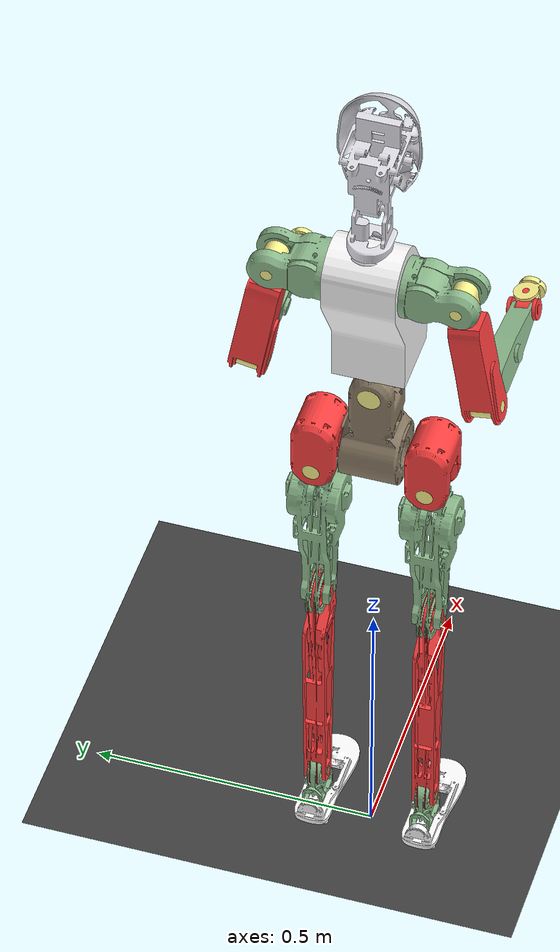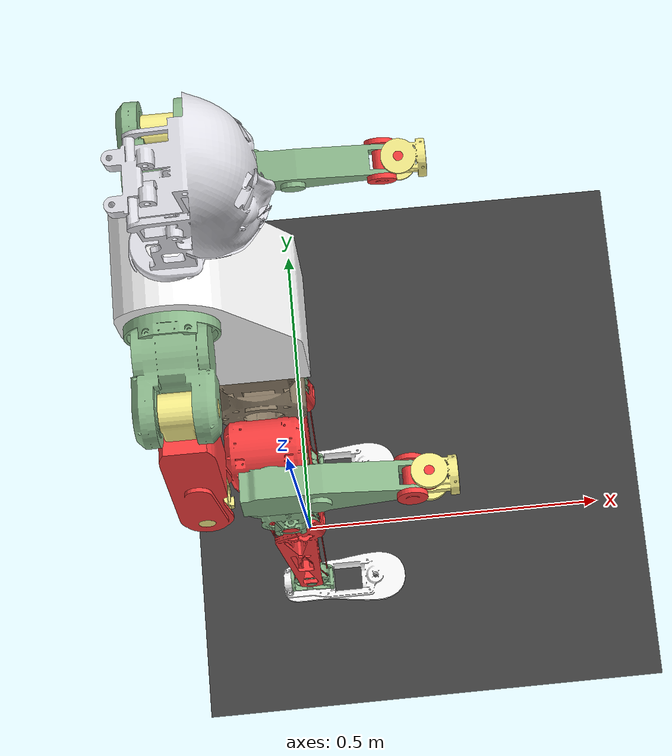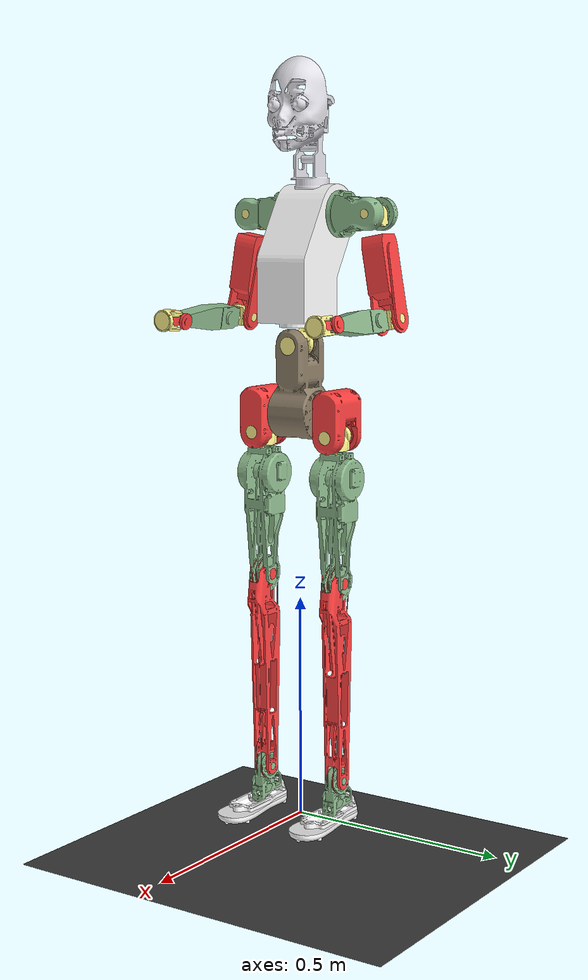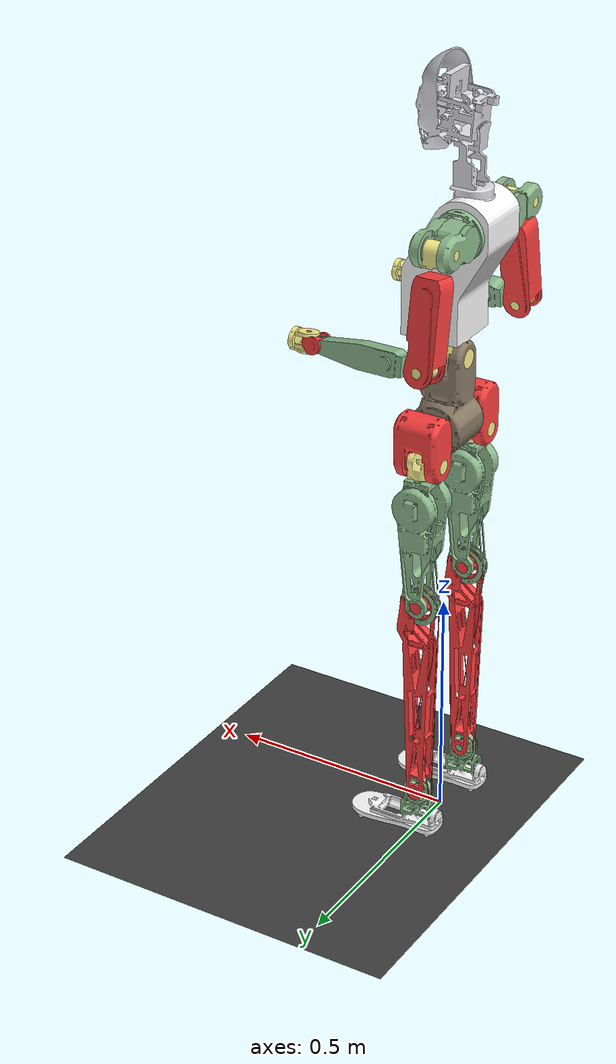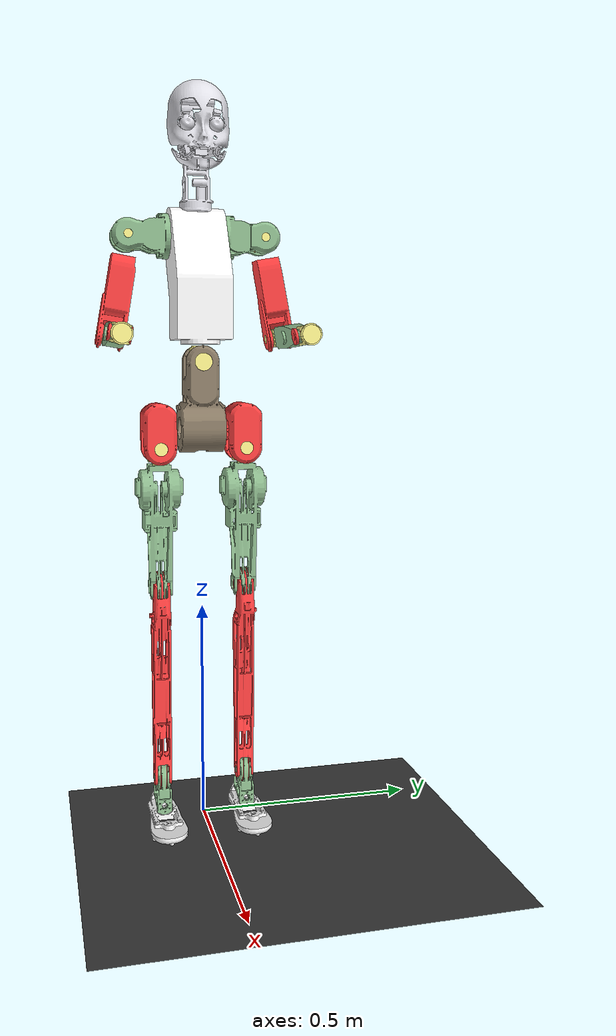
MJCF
<mujoco model="X3_fangsheng">
  <compiler angle="radian" meshdir="./meshes/"/>
  <statistic meansize="0.177939" extent="1.9618" center="0.0465088 1.93584e-06 -0.21519"/>
  <default>
    <joint damping="0.1" armature="0.01" frictionloss="0.1"/>
  </default>
  <asset>
    <texture type="skybox" builtin="gradient" width="128" height="128" rgb1="0.4 0.6 0.8" rgb2="0 0 0"/>
    <texture name="plane" type="2d" builtin="checker" rgb1="0.2 0.2 0.2" rgb2="0.3 0.3 0.3" width="512"
              height="512"/>
    <material name="plane" reflectance="0.0" texture="plane" texrepeat="1 1" texuniform="true"/>
    <mesh name="pelvis" file="pelvis.STL"/>
    <mesh name="left_hip_pitch_link" file="left_hip_pitch_link.STL"/>
    <mesh name="left_hip_roll_link" file="left_hip_roll_link.STL"/>
    <mesh name="left_hip_yaw_link" file="left_hip_yaw_link.STL"/>
    <mesh name="left_knee_link" file="left_knee_link.STL"/>
    <mesh name="left_ankle_pitch_link" file="left_ankle_pitch_link.STL"/>
    <mesh name="left_ankle_roll_link" file="left_ankle_roll_link.STL"/>
    <mesh name="right_hip_pitch_link" file="right_hip_pitch_link.STL"/>
    <mesh name="right_hip_roll_link" file="right_hip_roll_link.STL"/>
    <mesh name="right_hip_yaw_link" file="right_hip_yaw_link.STL"/>
    <mesh name="right_knee_link" file="right_knee_link.STL"/>
    <mesh name="right_ankle_pitch_link" file="right_ankle_pitch_link.STL"/>
    <mesh name="right_ankle_roll_link" file="right_ankle_roll_link.STL"/>
    <mesh name="waist_roll_link" file="waist_roll_link.STL"/>
    <mesh name="torso_link" file="torso_link.STL"/>
    <mesh name="left_shoulder_pitch_link" file="left_shoulder_pitch_link.STL"/>
    <mesh name="left_shoulder_roll_link" file="left_shoulder_roll_link.STL"/>
    <mesh name="left_shoulder_yaw_link" file="left_shoulder_yaw_link.STL"/>
    <mesh name="left_elbow_link" file="left_elbow_link.STL"/>
    <mesh name="left_wrist_roll_link" file="left_wrist_roll_link.STL"/>
    <mesh name="left_wrist_pitch_link" file="left_wrist_pitch_link.STL"/>
    <mesh name="left_wrist_yaw_link" file="left_wrist_yaw_link.STL"/>
    <mesh name="right_shoulder_pitch_link" file="right_shoulder_pitch_link.STL"/>
    <mesh name="right_shoulder_roll_link" file="right_shoulder_roll_link.STL"/>
    <mesh name="right_shoulder_yaw_link" file="right_shoulder_yaw_link.STL"/>
    <mesh name="right_elbow_link" file="right_elbow_link.STL"/>
    <mesh name="right_wrist_roll_link" file="right_wrist_roll_link.STL"/>
    <mesh name="right_wrist_pitch_link" file="right_wrist_pitch_link.STL"/>
    <mesh name="right_wrist_yaw_link" file="right_wrist_yaw_link.STL"/>
    <mesh name="head_link" file="head_link.STL"/>
  </asset>

  <worldbody>
    <geom name="floor" pos="0.001 0 0" size="100 100 .125" type="plane" material="plane" condim="3"
          conaffinity="15" friction="0.6 0.6 0.001"/>
    <light mode="trackcom" pos="0 0 5" dir="0 0 -1"/>
    <body name="pelvis" pos="0 0 0.87">
      <inertial pos="0 0 0.0835199" quat="0.700356 0.000195888 -0.000200327 0.713793" mass="3.5" diaginertia="0.015972 0.0152619 0.00733448"/>
      <joint name="floating_base_joint" type="free" limited="false" actuatorfrclimited="false"/>
      <geom type="mesh" contype="0" conaffinity="0" group="1" density="0" rgba="0.5451 0.48627 0.4 1" mesh="pelvis"/>
      <geom type="mesh" rgba="0.5451 0.48627 0.4 1" mesh="pelvis"/>
      <site name="imu" pos="0 0 0" size="0.01" type="sphere" rgba="0 0 0 0"/>
      <body name="left_hip_pitch_link" pos="0 0.0495 0.045">
        <inertial pos="0 0.0486009 5.014e-05" quat="0.707099 0.00340246 -0.00340246 0.707099" mass="1.3" diaginertia="0.00341357 0.00281701 0.00217281"/>
        <joint name="left_hip_pitch_joint" pos="0 0 0" axis="0 1 0" range="-2.3562 2.3562" actuatorfrcrange="-75 75"/>
        <geom type="mesh" contype="0" conaffinity="0" group="1" density="0" rgba="1 0.25098 0.25098 1" mesh="left_hip_pitch_link"/>
        <geom type="mesh" rgba="1 0.25098 0.25098 1" mesh="left_hip_pitch_link"/>
        <body name="left_hip_roll_link" pos="0 0.048 -0.044">
          <inertial pos="0.00021125 0 -0.00303622" quat="0.50257 0.497417 0.497417 0.50257" mass="0.2" diaginertia="0.00017774 0.000176564 4.94365e-05"/>
          <joint name="left_hip_roll_joint" pos="0 0 0" axis="1 0 0" range="-0.5236 1.6581" actuatorfrcrange="-40.2 40.2"/>
          <geom type="mesh" contype="0" conaffinity="0" group="1" density="0" rgba="1 0.96471 0.56078 1" mesh="left_hip_roll_link"/>
          <geom type="mesh" rgba="1 0.96471 0.56078 1" mesh="left_hip_roll_link"/>
          <body name="left_hip_yaw_link">
            <inertial pos="0.00068945 0.00010574 -0.171461" quat="0.758254 0.0018302 0.00279792 0.651951" mass="1.9" diaginertia="0.0185792 0.0185636 0.00185486"/>
            <joint name="left_hip_yaw_joint" pos="0 0 0" axis="0 0 1" range="-1.9199 3.1416" actuatorfrcrange="-40.2 40.2"/>
            <geom type="mesh" contype="0" conaffinity="0" group="1" density="0" rgba="0.560784 0.737255 0.560784 1" mesh="left_hip_yaw_link"/>
            <body name="left_knee_link" pos="0 0 -0.326">
              <inertial pos="0.00345955 6.222e-05 -0.197211" quat="0.70901 -0.00853288 -0.00882017 0.705091" mass="0.8" diaginertia="0.0167348 0.0166058 0.000403331"/>
              <joint name="left_knee_joint" pos="0 0 0" axis="0 1 0" range="0 2.3562" actuatorfrcrange="-57.2 57.2"/>
              <geom type="mesh" contype="0" conaffinity="0" group="1" density="0" rgba="1 0.25098 0.25098 1" mesh="left_knee_link"/>
              <geom type="mesh" rgba="1 0.25098 0.25098 1" mesh="left_knee_link"/>
              <body name="left_ankle_pitch_link" pos="0 0 -0.45">
                <inertial pos="0.00221247 -1.276e-05 -0.0219097" quat="0.701277 0.0788927 0.0786674 0.704129" mass="0.2" diaginertia="0.000198731 0.000148848 8.54514e-05"/>
                <joint name="left_ankle_pitch_joint" pos="0 0 0" axis="0 1 0" range="-1.0472 1.0472" actuatorfrcrange="-39.6 39.6"/>
                <geom type="mesh" contype="0" conaffinity="0" group="1" density="0" rgba="0.560784 0.737255 0.560784 1" mesh="left_ankle_pitch_link"/>
                <geom type="mesh" rgba="0.560784 0.737255 0.560784 1" mesh="left_ankle_pitch_link"/>
                <body name="left_ankle_roll_link" pos="0 0 -0.058">
                  <inertial pos="0.0473675 0 -0.0244193" quat="0 0.695143 0 0.718871" mass="0.6" diaginertia="0.00262209 0.00240644 0.000295972"/>
                  <joint name="left_ankle_roll_joint" pos="0 0 0" axis="1 0 0" range="-0.5236 0.5236" actuatorfrcrange="-16 16"/>
                  <geom type="mesh" contype="0" conaffinity="0" group="1" density="0" rgba="1 1 1 1" mesh="left_ankle_roll_link"/>
                  <geom size="0.005" pos="-0.035 0.025 -0.035" rgba="1 1 1 1"/>
                  <geom size="0.005" pos="-0.035 -0.025 -0.035" rgba="1 1 1 1"/>
                  <geom size="0.005" pos="0.12 0.035 -0.035" rgba="1 1 1 1"/>
                  <geom size="0.005" pos="0.12 -0.035 -0.035" rgba="1 1 1 1"/>
                  <geom size="0.005" pos="0.15 0 -0.035" rgba="1 1 1 1"/>
                </body>
              </body>
            </body>
          </body>
        </body>
      </body>
      <body name="right_hip_pitch_link" pos="0 -0.0495 0.045">
        <inertial pos="0 -0.0485764 -5.656e-05" quat="0.707098 -0.00343638 0.00343638 0.707098" mass="1.3" diaginertia="0.0034105 0.0028153 0.00217168"/>
        <joint name="right_hip_pitch_joint" pos="0 0 0" axis="0 1 0" range="-2.3562 2.3562" actuatorfrcrange="-75 75"/>
        <geom type="mesh" contype="0" conaffinity="0" group="1" density="0" rgba="1 0.25098 0.25098 1" mesh="right_hip_pitch_link"/>
        <geom type="mesh" rgba="1 0.25098 0.25098 1" mesh="right_hip_pitch_link"/>
        <body name="right_hip_roll_link" pos="0 -0.048 -0.044">
          <inertial pos="0.00021125 0 -0.00303638" quat="0.50257 0.497417 0.497417 0.50257" mass="0.2" diaginertia="0.00017774 0.000176564 4.94365e-05"/>
          <joint name="right_hip_roll_joint" pos="0 0 0" axis="1 0 0" range="-1.6581 0.5236" actuatorfrcrange="-40.2 40.2"/>
          <geom type="mesh" contype="0" conaffinity="0" group="1" density="0" rgba="1 0.964706 0.560784 1" mesh="right_hip_roll_link"/>
          <body name="right_hip_yaw_link">
            <inertial pos="0.00068946 -0.00010574 -0.171461" quat="0.651987 0.00279783 0.00183033 0.758223" mass="1.9" diaginertia="0.0185793 0.0185636 0.00185486"/>
            <joint name="right_hip_yaw_joint" pos="0 0 0" axis="0 0 1" range="-3.1416 1.9199" actuatorfrcrange="-40.2 40.2"/>
            <geom type="mesh" contype="0" conaffinity="0" group="1" density="0" rgba="0.560784 0.737255 0.560784 1" mesh="right_hip_yaw_link"/>
            <geom type="mesh" rgba="0.560784 0.737255 0.560784 1" mesh="right_hip_yaw_link"/>
            <body name="right_knee_link" pos="0 0 -0.326">
              <inertial pos="0.00345968 -6.223e-05 -0.19721" quat="0.705063 -0.00882097 -0.00853256 0.709038" mass="0.8" diaginertia="0.0167348 0.0166057 0.00040333"/>
              <joint name="right_knee_joint" pos="0 0 0" axis="0 1 0" range="0 2.3562" actuatorfrcrange="-57.2 57.2"/>
              <geom type="mesh" contype="0" conaffinity="0" group="1" density="0" rgba="1 0.25098 0.25098 1" mesh="right_knee_link"/>
              <geom type="mesh" rgba="1 0.25098 0.25098 1" mesh="right_knee_link"/>
              <body name="right_ankle_pitch_link" pos="0 0 -0.45">
                <inertial pos="0.00221243 1.275e-05 -0.0219096" quat="0.70288 0.0786827 0.078878 0.702529" mass="0.2" diaginertia="0.00019873 0.000148849 8.54513e-05"/>
                <joint name="right_ankle_pitch_joint" pos="0 0 0" axis="0 1 0" range="-1.0472 1.0472" actuatorfrcrange="-39.6 39.6"/>
                <geom type="mesh" contype="0" conaffinity="0" group="1" density="0" rgba="0.560784 0.737255 0.560784 1" mesh="right_ankle_pitch_link"/>
                <geom type="mesh" rgba="0.560784 0.737255 0.560784 1" mesh="right_ankle_pitch_link"/>
                <body name="right_ankle_roll_link" pos="0 0 -0.058">
                  <inertial pos="0.0473675 0 -0.0244193" quat="0 0.695143 0 0.718871" mass="0.6" diaginertia="0.00262209 0.00240644 0.000295972"/>
                  <joint name="right_ankle_roll_joint" pos="0 0 0" axis="1 0 0" range="-0.5236 0.5236" actuatorfrcrange="-16 16"/>
                  <geom type="mesh" contype="0" conaffinity="0" group="1" density="0" rgba="1 1 1 1" mesh="right_ankle_roll_link"/>
                  <geom size="0.005" pos="-0.035 0.025 -0.035" rgba="1 1 1 1"/>
                  <geom size="0.005" pos="-0.035 -0.025 -0.035" rgba="1 1 1 1"/>
                  <geom size="0.005" pos="0.12 0.035 -0.035" rgba="1 1 1 1"/>
                  <geom size="0.005" pos="0.12 -0.035 -0.035" rgba="1 1 1 1"/>
                  <geom size="0.005" pos="0.15 0 -0.035" rgba="1 1 1 1"/>
                </body>
              </body>
            </body>
          </body>
        </body>
      </body>
      <body name="waist_roll_link" pos="0 0 0.1955">
        <inertial pos="-0.00014764 0 0.00213647" quat="0.501766 0.498227 0.498227 0.501766" mass="0.6" diaginertia="0.00056644 0.00056272 0.00016427"/>
        <joint name="waist_roll_joint" pos="0 0 0" axis="1 0 0" range="-0.3491 0.3491" actuatorfrcrange="-40.2 40.2"/>
        <geom type="mesh" contype="0" conaffinity="0" group="1" density="0" rgba="1 0.964706 0.560784 1" mesh="waist_roll_link"/>
        <body name="torso_link">
          <inertial pos="-0.00882204 0.00010304 0.229501" quat="0.707963 0.0209185 0.0220226 0.705596" mass="5.5" diaginertia="0.10951 0.106313 0.015047"/>
          <joint name="waist_yaw_joint" pos="0 0 0" axis="0 0 1" range="-1.8326 1.8326" actuatorfrcrange="-40.2 40.2"/>
          <geom type="mesh" contype="0" conaffinity="0" group="1" density="0" rgba="1 1 1 1" mesh="torso_link"/>
          <geom type="mesh" rgba="1 1 1 1" mesh="torso_link"/>
          <geom pos="-0.050896 0 0.3365" quat="1 0 6.3565e-06 0" type="mesh" contype="0" conaffinity="0" group="1" density="0" rgba="0.886275 0.886275 0.913725 1" mesh="head_link"/>
          <geom pos="-0.050896 0 0.3365" quat="1 0 6.3565e-06 0" type="mesh" rgba="0.886275 0.886275 0.913725 1" mesh="head_link"/>
          <body name="left_shoulder_pitch_link" pos="-0.058001 0.06201 0.284">
            <inertial pos="-2.06536e-08 0.0365812 -7.17334e-06" quat="0.500065 0.499935 -0.499935 0.500065" mass="1" diaginertia="0.000843696 0.00081336 0.000447223"/>
            <joint name="left_shoulder_pitch_joint" pos="0 0 0" axis="0 1 0" range="-3.1416 1.5708" actuatorfrcrange="-50 50"/>
            <geom type="mesh" contype="0" conaffinity="0" group="1" density="0" rgba="0.560784 0.737255 0.560784 1" mesh="left_shoulder_pitch_link"/>
            <geom type="mesh" rgba="0.560784 0.737255 0.560784 1" mesh="left_shoulder_pitch_link"/>
            <body name="left_shoulder_roll_link" pos="0 0.09499 0" quat="0.996195 0.0871543 0 0">
              <inertial pos="0 7.351e-05 -0.00201604" quat="0.536967 0.460073 0.536967 0.460073" mass="0.2" diaginertia="9.4879e-05 9.2371e-05 5.098e-05"/>
              <joint name="left_shoulder_roll_joint" pos="0 0 0" axis="1 0 0" range="-0.1745 3.0543" actuatorfrcrange="-22.6 22.6"/>
              <geom type="mesh" contype="0" conaffinity="0" group="1" density="0" rgba="1 0.964706 0.560784 1" mesh="left_shoulder_roll_link"/>
              <geom type="mesh" rgba="1 0.964706 0.560784 1" mesh="left_shoulder_roll_link"/>
              <body name="left_shoulder_yaw_link">
                <inertial pos="-0.00122991 0.0007076 -0.133236" quat="0.999705 0.00235709 -0.0152092 0.0187755" mass="1.8" diaginertia="0.00530138 0.00524155 0.00106631"/>
                <joint name="left_shoulder_yaw_joint" pos="0 0 0" axis="0 0 1" range="-2.0071 2.0071" actuatorfrcrange="-22.6 22.6"/>
                <geom type="mesh" contype="0" conaffinity="0" group="1" density="0" rgba="1 0.25098 0.25098 1" mesh="left_shoulder_yaw_link"/>
                <geom type="mesh" rgba="1 0.25098 0.25098 1" mesh="left_shoulder_yaw_link"/>
                <body name="left_elbow_link" pos="0 0 -0.23">
                  <inertial pos="0.0022833 0 8.326e-05" quat="0.458364 0.458364 -0.538426 0.538426" mass="0.2" diaginertia="6.97795e-05 6.70505e-05 5.629e-05"/>
                  <joint name="left_elbow_joint" pos="0 0 0" axis="0 1 0" range="-0.4363 1.5708" actuatorfrcrange="-18.8 18.8"/>
                  <geom type="mesh" contype="0" conaffinity="0" group="1" density="0" rgba="1 0.96471 0.56078 1" mesh="left_elbow_link"/>
                  <geom type="mesh" rgba="1 0.96471 0.56078 1" mesh="left_elbow_link"/>
                  <body name="left_wrist_roll_link">
                    <inertial pos="0.12524 0.00023629 0" quat="0.49731 0.49731 0.502676 0.502676" mass="0.8" diaginertia="0.00220787 0.00217799 0.000236973"/>
                    <joint name="left_wrist_roll_joint" pos="0 0 0" axis="1 0 0" range="-2.0071 2.0071" actuatorfrcrange="-18.8 18.8"/>
                    <geom type="mesh" contype="0" conaffinity="0" group="1" density="0" rgba="0.560784 0.737255 0.560784 1" mesh="left_wrist_roll_link"/>
                    <geom type="mesh" rgba="0.560784 0.737255 0.560784 1" mesh="left_wrist_roll_link"/>
                    <body name="left_wrist_pitch_link" pos="0.23522 0 0">
                      <inertial pos="0.00731112 0 0" quat="0.5 0.5 -0.5 0.5" mass="0.1" diaginertia="3.522e-05 2.7e-05 2.011e-05"/>
                      <joint name="left_wrist_pitch_joint" pos="0 0 0" axis="0 1 0" range="-0.6981 0.6981" actuatorfrcrange="-2.8 2.8"/>
                      <geom type="mesh" contype="0" conaffinity="0" group="1" density="0" rgba="1 0.25098 0.25098 1" mesh="left_wrist_pitch_link"/>
                      <geom type="mesh" rgba="1 0.25098 0.25098 1" mesh="left_wrist_pitch_link"/>
                      <body name="left_wrist_yaw_link" pos="0.021282 0 0">
                        <inertial pos="0.00799787 0 0.00020296" quat="0.702865 0.0773327 0.0773327 0.702865" mass="0.1" diaginertia="4.629e-05 3.86671e-05 3.51329e-05"/>
                        <joint name="left_wrist_yaw_joint" pos="0 0 0" axis="0 0 1" range="-0.8727 0.8727" actuatorfrcrange="-3.4 3.4"/>
                        <geom type="mesh" contype="0" conaffinity="0" group="1" density="0" rgba="1 0.964706 0.560784 1" mesh="left_wrist_yaw_link"/>
                        <geom size="0.02 0.005" pos="0.028 0 0" quat="0.707105 0 0.707108 0" type="cylinder" rgba="1 0.964706 0.560784 1"/>
                      </body>
                    </body>
                  </body>
                </body>
              </body>
            </body>
          </body>
          <body name="right_shoulder_pitch_link" pos="-0.058001 -0.06199 0.284">
            <inertial pos="-2.06657e-08 -0.036602 7.17335e-06" quat="0.500065 0.499935 -0.499935 0.500065" mass="1" diaginertia="0.000843696 0.00081336 0.000447223"/>
            <joint name="right_shoulder_pitch_joint" pos="0 0 0" axis="0 1 0" range="-3.1416 1.5708" actuatorfrcrange="-50 50"/>
            <geom type="mesh" contype="0" conaffinity="0" group="1" density="0" rgba="0.560784 0.737255 0.560784 1" mesh="right_shoulder_pitch_link"/>
            <geom type="mesh" rgba="0.560784 0.737255 0.560784 1" mesh="right_shoulder_pitch_link"/>
            <body name="right_shoulder_roll_link" pos="0 -0.09501 0" quat="0.996195 -0.0871543 0 0">
              <inertial pos="0 7.351e-05 -0.00201604" quat="0.536967 0.460073 0.536967 0.460073" mass="0.2" diaginertia="9.4879e-05 9.2371e-05 5.098e-05"/>
              <joint name="right_shoulder_roll_joint" pos="0 0 0" axis="1 0 0" range="-3.0543 0.1745" actuatorfrcrange="-22.6 22.6"/>
              <geom type="mesh" contype="0" conaffinity="0" group="1" density="0" rgba="1 0.964706 0.560784 1" mesh="right_shoulder_roll_link"/>
              <geom type="mesh" rgba="1 0.964706 0.560784 1" mesh="right_shoulder_roll_link"/>
              <body name="right_shoulder_yaw_link">
                <inertial pos="-0.00122991 0.0007076 -0.133236" quat="0.999705 0.00235709 -0.0152092 0.0187755" mass="1.8" diaginertia="0.00530138 0.00524155 0.00106631"/>
                <joint name="right_shoulder_yaw_joint" pos="0 0 0" axis="0 0 1" range="-2.0071 2.0071" actuatorfrcrange="-22.6 22.6"/>
                <geom type="mesh" contype="0" conaffinity="0" group="1" density="0" rgba="1 0.25098 0.25098 1" mesh="right_shoulder_yaw_link"/>
                <geom type="mesh" rgba="1 0.25098 0.25098 1" mesh="right_shoulder_yaw_link"/>
                <body name="right_elbow_link" pos="0 0 -0.23">
                  <inertial pos="0.0022833 0 -8.326e-05" quat="0.458364 0.458364 -0.538426 0.538426" mass="0.2" diaginertia="6.97795e-05 6.70505e-05 5.629e-05"/>
                  <joint name="right_elbow_joint" pos="0 0 0" axis="0 1 0" range="-0.4363 1.5708" actuatorfrcrange="-18.8 18.8"/>
                  <geom type="mesh" contype="0" conaffinity="0" group="1" density="0" rgba="1 0.964706 0.560784 1" mesh="right_elbow_link"/>
                  <geom type="mesh" rgba="1 0.964706 0.560784 1" mesh="right_elbow_link"/>
                  <body name="right_wrist_roll_link">
                    <inertial pos="0.12524 0.00023629 0" quat="0.49731 0.49731 0.502676 0.502676" mass="0.8" diaginertia="0.00220787 0.00217799 0.000236973"/>
                    <joint name="right_wrist_roll_joint" pos="0 0 0" axis="1 0 0" range="-2.0071 2.0071" actuatorfrcrange="-18.8 18.8"/>
                    <geom type="mesh" contype="0" conaffinity="0" group="1" density="0" rgba="0.560784 0.737255 0.560784 1" mesh="right_wrist_roll_link"/>
                    <geom type="mesh" rgba="0.560784 0.737255 0.560784 1" mesh="right_wrist_roll_link"/>
                    <body name="right_wrist_pitch_link" pos="0.235 0 0">
                      <inertial pos="0.00752937 0 0" quat="0.5 0.5 -0.5 0.5" mass="0.1" diaginertia="3.522e-05 2.7e-05 2.011e-05"/>
                      <joint name="right_wrist_pitch_joint" pos="0 0 0" axis="0 1 0" range="-0.6981 0.6981" actuatorfrcrange="-2.8 2.8"/>
                      <geom type="mesh" contype="0" conaffinity="0" group="1" density="0" rgba="1 0.25098 0.25098 1" mesh="right_wrist_pitch_link"/>
                      <geom type="mesh" rgba="1 0.25098 0.25098 1" mesh="right_wrist_pitch_link"/>
                      <body name="right_wrist_yaw_link" pos="0.0215 0 0">
                        <inertial pos="0.00799787 0 0.00020296" quat="0.702865 0.0773327 0.0773327 0.702865" mass="0.1" diaginertia="4.629e-05 3.86671e-05 3.51329e-05"/>
                        <joint name="right_wrist_yaw_joint" pos="0 0 0" axis="0 0 1" range="-0.8727 0.8727" actuatorfrcrange="-3.4 3.4"/>
                        <geom type="mesh" contype="0" conaffinity="0" group="1" density="0" rgba="1 0.964706 0.560784 1" mesh="right_wrist_yaw_link"/>
                        <geom size="0.02 0.005" pos="0.028 0 0" quat="0.707105 0 0.707108 0" type="cylinder" rgba="1 0.964706 0.560784 1"/>
                      </body>
                    </body>
                  </body>
                </body>
              </body>
            </body>
          </body>
        </body>
      </body>
    </body>
  </worldbody>
  <actuator>
    <motor name="left_hip_pitch_joint" joint="left_hip_pitch_joint"/>
    <motor name="left_hip_roll_joint" joint="left_hip_roll_joint"/>
    <motor name="left_hip_yaw_joint" joint="left_hip_yaw_joint"/>
    <motor name="left_knee_joint" joint="left_knee_joint"/>
    <motor name="left_ankle_pitch_joint" joint="left_ankle_pitch_joint"/>
    <motor name="left_ankle_roll_joint" joint="left_ankle_roll_joint"/>
    <motor name="right_hip_pitch_joint" joint="right_hip_pitch_joint"/>
    <motor name="right_hip_roll_joint" joint="right_hip_roll_joint"/>
    <motor name="right_hip_yaw_joint" joint="right_hip_yaw_joint"/>
    <motor name="right_knee_joint" joint="right_knee_joint"/>
    <motor name="right_ankle_pitch_joint" joint="right_ankle_pitch_joint"/>
    <motor name="right_ankle_roll_joint" joint="right_ankle_roll_joint"/>
    <motor name="waist_roll_joint" joint="waist_roll_joint"/>
    <motor name="waist_yaw_joint" joint="waist_yaw_joint"/>
    <motor name="left_shoulder_pitch_joint" joint="left_shoulder_pitch_joint"/>
    <motor name="left_shoulder_roll_joint" joint="left_shoulder_roll_joint"/>
    <motor name="left_shoulder_yaw_joint" joint="left_shoulder_yaw_joint"/>
    <motor name="left_elbow_joint" joint="left_elbow_joint"/>
    <motor name="left_wrist_roll_joint" joint="left_wrist_roll_joint"/>
    <motor name="left_wrist_pitch_joint" joint="left_wrist_pitch_joint"/>
    <motor name="left_wrist_yaw_joint" joint="left_wrist_yaw_joint"/>
    <motor name="right_shoulder_pitch_joint" joint="right_shoulder_pitch_joint"/>
    <motor name="right_shoulder_roll_joint" joint="right_shoulder_roll_joint"/>
    <motor name="right_shoulder_yaw_joint" joint="right_shoulder_yaw_joint"/>
    <motor name="right_elbow_joint" joint="right_elbow_joint"/>
    <motor name="right_wrist_roll_joint" joint="right_wrist_roll_joint"/>
    <motor name="right_wrist_pitch_joint" joint="right_wrist_pitch_joint"/>
    <motor name="right_wrist_yaw_joint" joint="right_wrist_yaw_joint"/>
  </actuator>
  <sensor>
    <gyro          name="gyro"    site='imu' />
    <accelerometer name="acc"     site='imu'/>
    <framequat     name='bq'      objtype='site' objname='imu'/>
    <velocimeter   name='blv'     site='imu' noise='0.001' cutoff='30'/>
  </sensor>
</mujoco>
